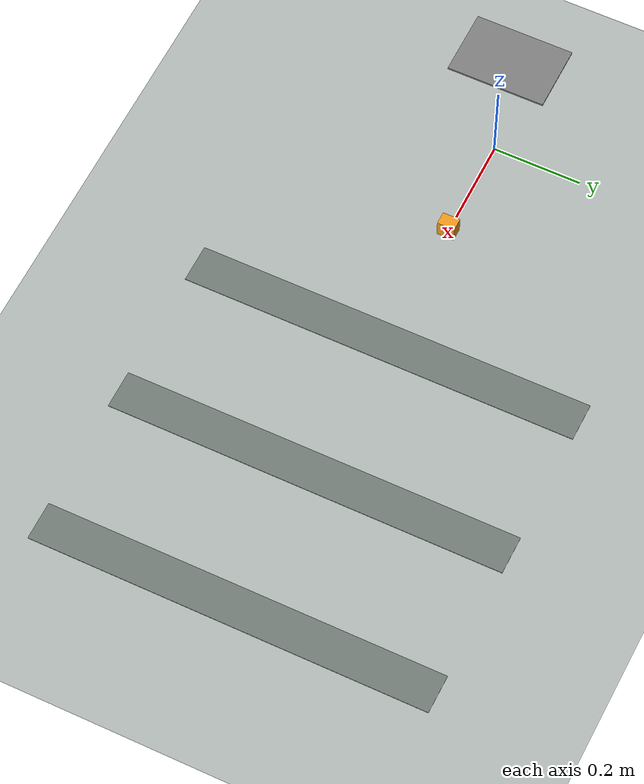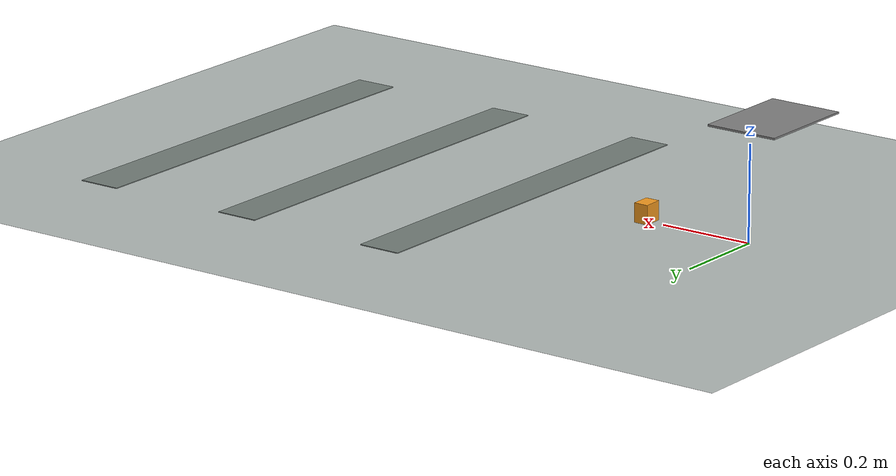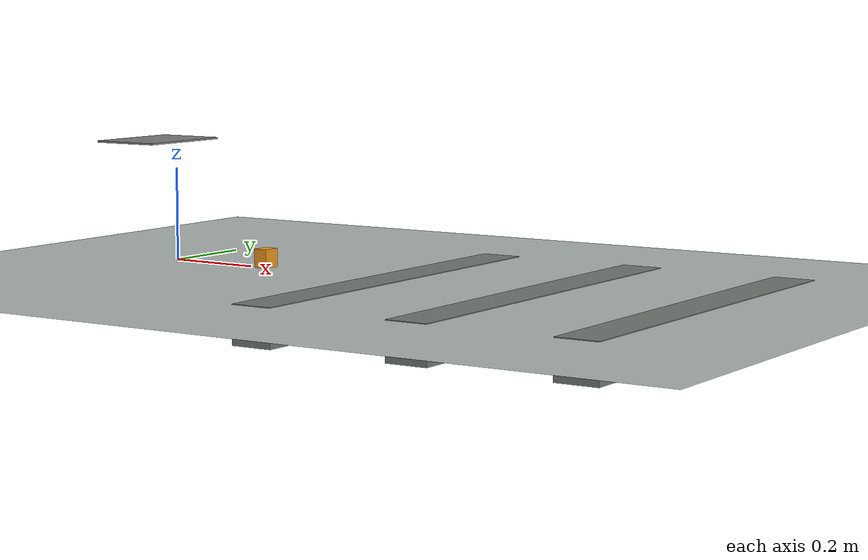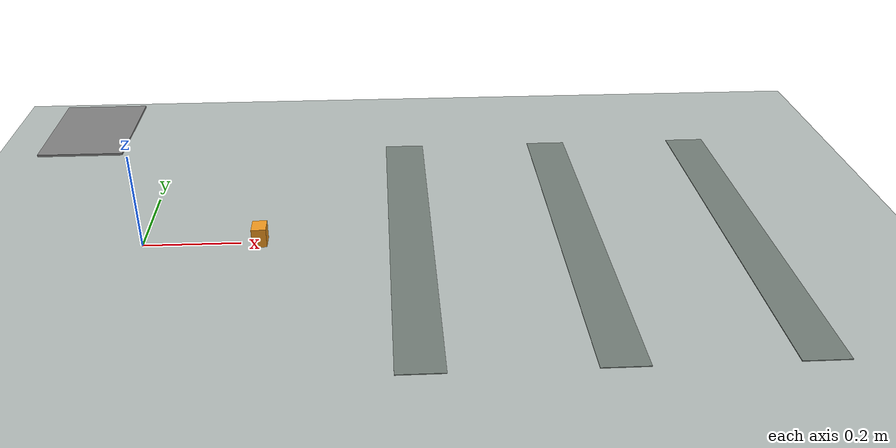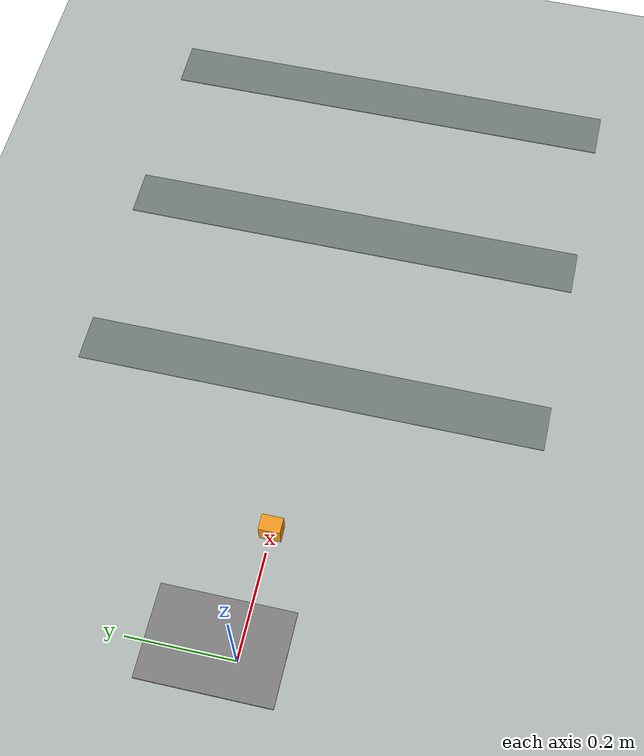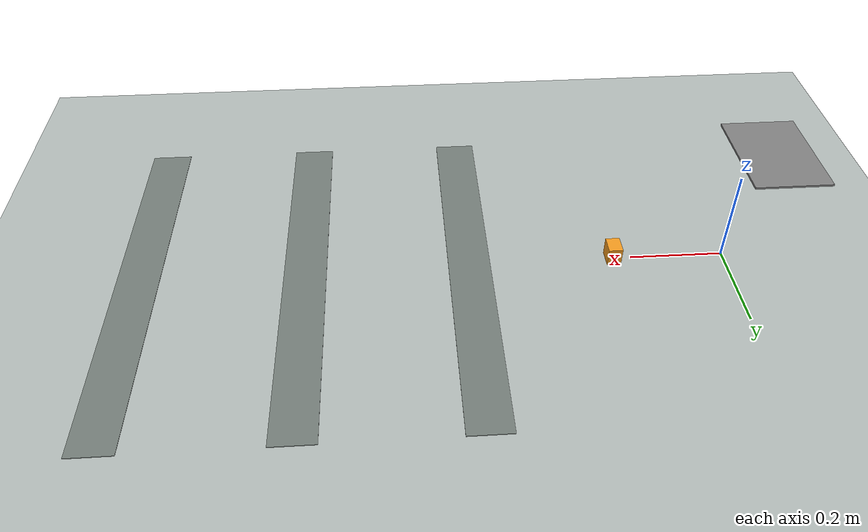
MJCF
<mujoco model="Sai_Agent_002_full">
  <compiler angle="radian" inertiafromgeom="false" autolimits="true" />
  <option timestep=".001" integrator="implicitfast" iterations="50" cone="elliptic" />
  <default>
    <geom density="0" friction=".8 .002 .0002" condim="4" solref=".006 1" contype="1" conaffinity="6" />
    <joint damping=".03" armature=".002" />
  </default>
  <visual>
    <global offwidth="1280" offheight="800" fovy="38" />
    <headlight ambient=".55 .55 .55" diffuse=".65 .65 .65" />
  </visual>
  <asset>
    <mesh name="chassis_contactmesh_2" file="contacts/cargo_shell_00.obj" />
    <mesh name="chassis_contactmesh_3" file="contacts/cargo_shell_01.obj" />
    <mesh name="chassis_contactmesh_4" file="contacts/cargo_shell_02.obj" />
    <mesh name="chassis_contactmesh_5" file="contacts/cargo_shell_03.obj" />
    <mesh name="chassis_contactmesh_6" file="contacts/cargo_shell_04.obj" />
    <mesh name="chassis_contactmesh_7" file="contacts/cargo_shell_05.obj" />
    <mesh name="chassis_contactmesh_8" file="contacts/cargo_shell_06.obj" />
    <mesh name="chassis_contactmesh_9" file="contacts/cargo_shell_07.obj" />
    <mesh name="chassis_contactmesh_10" file="contacts/cargo_shell_08.obj" />
    <mesh name="chassis_contactmesh_11" file="contacts/cargo_shell_09.obj" />
    <mesh name="chassis_contactmesh_12" file="contacts/cargo_shell_10.obj" />
    <mesh name="chassis_contactmesh_13" file="contacts/cargo_shell_11.obj" />
    <mesh name="chassis_contactmesh_14" file="contacts/cargo_shell_12.obj" />
    <mesh name="chassis_contactmesh_15" file="contacts/cargo_shell_13.obj" />
    <mesh name="chassis_contactmesh_16" file="contacts/cargo_shell_14.obj" />
    <mesh name="chassis_contactmesh_17" file="contacts/cargo_shell_15.obj" />
    <mesh name="chassis_contactmesh_18" file="contacts/cargo_shell_16.obj" />
    <mesh name="chassis_contactmesh_19" file="contacts/cargo_shell_17.obj" />
    <mesh name="chassis_contactmesh_20" file="contacts/cargo_shell_18.obj" />
    <mesh name="chassis_contactmesh_21" file="contacts/cargo_shell_19.obj" />
    <mesh name="chassis_contactmesh_22" file="contacts/cargo_shell_20.obj" />
    <mesh name="chassis_contactmesh_23" file="contacts/cargo_shell_21.obj" />
    <mesh name="chassis_contactmesh_24" file="contacts/cargo_shell_22.obj" />
    <mesh name="chassis_contactmesh_25" file="contacts/cargo_shell_23.obj" />
    <mesh name="chassis_contactmesh_26" file="contacts/cargo_shell_24.obj" />
    <mesh name="chassis_contactmesh_27" file="contacts/cargo_shell_25.obj" />
    <mesh name="chassis_contactmesh_28" file="contacts/cargo_shell_26.obj" />
    <mesh name="chassis_contactmesh_29" file="contacts/cargo_shell_27.obj" />
    <mesh name="chassis_contactmesh_30" file="contacts/cargo_shell_28.obj" />
    <mesh name="chassis_contactmesh_31" file="contacts/cargo_shell_29.obj" />
    <mesh name="chassis_contactmesh_32" file="contacts/cargo_shell_30.obj" />
    <mesh name="chassis_contactmesh_33" file="contacts/cargo_shell_31.obj" />
    <mesh name="arm_pan_carrier_contactmesh_0" file="contacts/pan_carrier_1_00.obj" />
    <mesh name="arm_upper_contactmesh_0" file="contacts/upper_2_00.obj" />
    <mesh name="arm_lower_contactmesh_0" file="contacts/lower_3_00.obj" />
    <mesh name="arm_wrist_contactmesh_0" file="contacts/wrist_7_00.obj" />
    <mesh name="arm_gripper_contactmesh_0" file="contacts/gripper_8_00.obj" />
    <mesh name="arm_gripper_contactmesh_1" file="contacts/gripper_8_01.obj" />
    <mesh name="arm_gripper_contactmesh_2" file="contacts/gripper_8_02.obj" />
    <mesh name="arm_gripper_contactmesh_3" file="contacts/gripper_8_03.obj" />
    <mesh name="arm_gripper_contactmesh_4" file="contacts/gripper_8_04.obj" />
    <mesh name="arm_gripper_contactmesh_5" file="contacts/gripper_8_05.obj" />
    <mesh name="arm_gripper_contactmesh_6" file="contacts/gripper_8_06.obj" />
    <mesh name="arm_gripper_contactmesh_7" file="contacts/gripper_8_07.obj" />
    <mesh name="arm_gripper_contactmesh_8" file="contacts/gripper_8_08.obj" />
    <mesh name="arm_gripper_contactmesh_9" file="contacts/gripper_8_09.obj" />
    <mesh name="arm_gripper_contactmesh_10" file="contacts/gripper_8_10.obj" />
    <mesh name="arm_gripper_contactmesh_11" file="contacts/gripper_8_11.obj" />
    <mesh name="arm_gripper_contactmesh_12" file="contacts/gripper_8_12.obj" />
    <mesh name="arm_gripper_contactmesh_13" file="contacts/gripper_8_13.obj" />
    <mesh name="arm_gripper_contactmesh_14" file="contacts/gripper_8_14.obj" />
    <mesh name="arm_gripper_contactmesh_15" file="contacts/gripper_8_15.obj" />
    <mesh name="arm_gripper_contactmesh_16" file="contacts/gripper_8_16.obj" />
    <mesh name="arm_gripper_contactmesh_17" file="contacts/gripper_8_17.obj" />
    <mesh name="arm_gripper_contactmesh_18" file="contacts/gripper_8_18.obj" />
    <mesh name="arm_gripper_contactmesh_19" file="contacts/gripper_8_19.obj" />
    <mesh name="arm_gripper_contactmesh_20" file="contacts/gripper_8_20.obj" />
    <mesh name="arm_gripper_contactmesh_21" file="contacts/gripper_8_21.obj" />
    <mesh name="arm_gripper_contactmesh_22" file="contacts/gripper_8_22.obj" />
    <mesh name="arm_gripper_contactmesh_23" file="contacts/gripper_8_23.obj" />
    <mesh name="arm_gripper_contactmesh_24" file="contacts/gripper_8_24.obj" />
    <mesh name="arm_gripper_contactmesh_25" file="contacts/gripper_8_25.obj" />
    <mesh name="arm_gripper_contactmesh_26" file="contacts/gripper_8_26.obj" />
    <mesh name="arm_gripper_contactmesh_27" file="contacts/gripper_8_27.obj" />
    <mesh name="arm_gripper_contactmesh_28" file="contacts/gripper_8_28.obj" />
    <mesh name="arm_gripper_contactmesh_29" file="contacts/gripper_8_29.obj" />
    <mesh name="arm_gripper_contactmesh_30" file="contacts/gripper_8_30.obj" />
    <mesh name="arm_gripper_contactmesh_31" file="contacts/gripper_8_31.obj" />
    <mesh name="arm_moving_jaw_contactmesh_0" file="contacts/moving_jaw_9_00.obj" />
    <mesh name="arm_moving_jaw_contactmesh_1" file="contacts/moving_jaw_9_01.obj" />
    <mesh name="arm_moving_jaw_contactmesh_2" file="contacts/moving_jaw_9_02.obj" />
    <mesh name="arm_moving_jaw_contactmesh_3" file="contacts/moving_jaw_9_03.obj" />
    <mesh name="arm_moving_jaw_contactmesh_4" file="contacts/moving_jaw_9_04.obj" />
    <mesh name="arm_moving_jaw_contactmesh_5" file="contacts/moving_jaw_9_05.obj" />
    <mesh name="arm_moving_jaw_contactmesh_6" file="contacts/moving_jaw_9_06.obj" />
    <mesh name="arm_moving_jaw_contactmesh_7" file="contacts/moving_jaw_9_07.obj" />
    <mesh name="arm_moving_jaw_contactmesh_8" file="contacts/moving_jaw_9_08.obj" />
    <mesh name="arm_moving_jaw_contactmesh_9" file="contacts/moving_jaw_9_09.obj" />
    <mesh name="arm_moving_jaw_contactmesh_10" file="contacts/moving_jaw_9_10.obj" />
    <mesh name="arm_moving_jaw_contactmesh_11" file="contacts/moving_jaw_9_11.obj" />
    <mesh name="arm_moving_jaw_contactmesh_12" file="contacts/moving_jaw_9_12.obj" />
    <mesh name="arm_moving_jaw_contactmesh_13" file="contacts/moving_jaw_9_13.obj" />
    <mesh name="arm_moving_jaw_contactmesh_14" file="contacts/moving_jaw_9_14.obj" />
    <mesh name="arm_moving_jaw_contactmesh_15" file="contacts/moving_jaw_9_15.obj" />
    <mesh name="arm_moving_jaw_contactmesh_16" file="contacts/moving_jaw_9_16.obj" />
    <mesh name="arm_moving_jaw_contactmesh_17" file="contacts/moving_jaw_9_17.obj" />
    <mesh name="arm_moving_jaw_contactmesh_18" file="contacts/moving_jaw_9_18.obj" />
    <mesh name="arm_moving_jaw_contactmesh_19" file="contacts/moving_jaw_9_19.obj" />
    <mesh name="arm_moving_jaw_contactmesh_20" file="contacts/moving_jaw_9_20.obj" />
    <mesh name="arm_moving_jaw_contactmesh_21" file="contacts/moving_jaw_9_21.obj" />
    <mesh name="arm_moving_jaw_contactmesh_22" file="contacts/moving_jaw_9_22.obj" />
    <mesh name="arm_moving_jaw_contactmesh_23" file="contacts/moving_jaw_9_23.obj" />
    <mesh name="arm_moving_jaw_contactmesh_24" file="contacts/moving_jaw_9_24.obj" />
    <mesh name="arm_moving_jaw_contactmesh_25" file="contacts/moving_jaw_9_25.obj" />
    <mesh name="arm_moving_jaw_contactmesh_26" file="contacts/moving_jaw_9_26.obj" />
    <mesh name="arm_moving_jaw_contactmesh_27" file="contacts/moving_jaw_9_27.obj" />
    <mesh name="arm_moving_jaw_contactmesh_28" file="contacts/moving_jaw_9_28.obj" />
    <mesh name="arm_moving_jaw_contactmesh_29" file="contacts/moving_jaw_9_29.obj" />
    <mesh name="arm_moving_jaw_contactmesh_30" file="contacts/moving_jaw_9_30.obj" />
    <mesh name="arm_moving_jaw_contactmesh_31" file="contacts/moving_jaw_9_31.obj" />
  </asset>
  <worldbody>
    <light pos="1 -2 4" dir="-.2 .4 -1" />
    <geom name="ground" type="plane" size="20 20 .1" rgba=".70 .73 .72 1" contype="2" conaffinity="5" />
    <body name="chassis" pos="0 0 .224">
      <freejoint name="floating_base" />
      <inertial mass="3.4179820792964373" pos="-0.002645314755932775 0.0011379632582390964 0.004087642108958029" fullinertia="0.02233667623677514 0.017951541497251332 0.032824449997219604 -0.0003700540060915821 -0.0009478608575620262 -0.0002605439952553236" />
      <geom name="chassis_contact_0" type="box" rgba=".18 .22 .28 1" group="3" pos="0 0 -0.014" size="0.12 0.067 0.041" />
      <geom name="chassis_contact_1" type="box" rgba=".18 .22 .28 1" group="3" pos="-.052 0 .038" size=".076 .110 .001" />
      <geom name="chassis_contact_2" type="mesh" rgba=".18 .22 .28 1" group="3" mesh="chassis_contactmesh_2" />
      <geom name="chassis_contact_3" type="mesh" rgba=".18 .22 .28 1" group="3" mesh="chassis_contactmesh_3" />
      <geom name="chassis_contact_4" type="mesh" rgba=".18 .22 .28 1" group="3" mesh="chassis_contactmesh_4" />
      <geom name="chassis_contact_5" type="mesh" rgba=".18 .22 .28 1" group="3" mesh="chassis_contactmesh_5" />
      <geom name="chassis_contact_6" type="mesh" rgba=".18 .22 .28 1" group="3" mesh="chassis_contactmesh_6" />
      <geom name="chassis_contact_7" type="mesh" rgba=".18 .22 .28 1" group="3" mesh="chassis_contactmesh_7" />
      <geom name="chassis_contact_8" type="mesh" rgba=".18 .22 .28 1" group="3" mesh="chassis_contactmesh_8" />
      <geom name="chassis_contact_9" type="mesh" rgba=".18 .22 .28 1" group="3" mesh="chassis_contactmesh_9" />
      <geom name="chassis_contact_10" type="mesh" rgba=".18 .22 .28 1" group="3" mesh="chassis_contactmesh_10" />
      <geom name="chassis_contact_11" type="mesh" rgba=".18 .22 .28 1" group="3" mesh="chassis_contactmesh_11" />
      <geom name="chassis_contact_12" type="mesh" rgba=".18 .22 .28 1" group="3" mesh="chassis_contactmesh_12" />
      <geom name="chassis_contact_13" type="mesh" rgba=".18 .22 .28 1" group="3" mesh="chassis_contactmesh_13" />
      <geom name="chassis_contact_14" type="mesh" rgba=".18 .22 .28 1" group="3" mesh="chassis_contactmesh_14" />
      <geom name="chassis_contact_15" type="mesh" rgba=".18 .22 .28 1" group="3" mesh="chassis_contactmesh_15" />
      <geom name="chassis_contact_16" type="mesh" rgba=".18 .22 .28 1" group="3" mesh="chassis_contactmesh_16" />
      <geom name="chassis_contact_17" type="mesh" rgba=".18 .22 .28 1" group="3" mesh="chassis_contactmesh_17" />
      <geom name="chassis_contact_18" type="mesh" rgba=".18 .22 .28 1" group="3" mesh="chassis_contactmesh_18" />
      <geom name="chassis_contact_19" type="mesh" rgba=".18 .22 .28 1" group="3" mesh="chassis_contactmesh_19" />
      <geom name="chassis_contact_20" type="mesh" rgba=".18 .22 .28 1" group="3" mesh="chassis_contactmesh_20" />
      <geom name="chassis_contact_21" type="mesh" rgba=".18 .22 .28 1" group="3" mesh="chassis_contactmesh_21" />
      <geom name="chassis_contact_22" type="mesh" rgba=".18 .22 .28 1" group="3" mesh="chassis_contactmesh_22" />
      <geom name="chassis_contact_23" type="mesh" rgba=".18 .22 .28 1" group="3" mesh="chassis_contactmesh_23" />
      <geom name="chassis_contact_24" type="mesh" rgba=".18 .22 .28 1" group="3" mesh="chassis_contactmesh_24" />
      <geom name="chassis_contact_25" type="mesh" rgba=".18 .22 .28 1" group="3" mesh="chassis_contactmesh_25" />
      <geom name="chassis_contact_26" type="mesh" rgba=".18 .22 .28 1" group="3" mesh="chassis_contactmesh_26" />
      <geom name="chassis_contact_27" type="mesh" rgba=".18 .22 .28 1" group="3" mesh="chassis_contactmesh_27" />
      <geom name="chassis_contact_28" type="mesh" rgba=".18 .22 .28 1" group="3" mesh="chassis_contactmesh_28" />
      <geom name="chassis_contact_29" type="mesh" rgba=".18 .22 .28 1" group="3" mesh="chassis_contactmesh_29" />
      <geom name="chassis_contact_30" type="mesh" rgba=".18 .22 .28 1" group="3" mesh="chassis_contactmesh_30" />
      <geom name="chassis_contact_31" type="mesh" rgba=".18 .22 .28 1" group="3" mesh="chassis_contactmesh_31" />
      <geom name="chassis_contact_32" type="mesh" rgba=".18 .22 .28 1" group="3" mesh="chassis_contactmesh_32" />
      <geom name="chassis_contact_33" type="mesh" rgba=".18 .22 .28 1" group="3" mesh="chassis_contactmesh_33" />
      <body name="front_left_haa" pos="0.08 0.1 0.000812737446806">
        <joint name="front_left_haa" type="hinge" axis="1 0 0" limited="true" range="-0.45 0.45" />
        <inertial pos="0.0342709656212 0.00683191650877 -8.01433919229e-12" mass="0.3723587323657154" diaginertia="0.000199865871851 0.000194857044869 0.000203824049134" />
        <geom name="front_left_haa_contact_0" type="capsule" rgba=".18 .22 .28 1" group="3" size="0.013" fromto="0 0 0 0.035 0.032 0" />
        <body name="front_left_upper" pos="0.035 0.032 0">
          <joint name="front_left_hip" type="hinge" axis="0 1 0" limited="true" range="-0.7 0.7" />
          <inertial pos="0.0463471772177 -0.0187045410886 -0.0693661033796" mass="0.40217792249786893" diaginertia="0.000364553482906 0.000406376960963 0.000294139286778" />
          <geom name="front_left_upper_contact_0" type="capsule" rgba=".18 .22 .28 1" group="3" size="0.013" fromto="0 0 0 0.05 0.004 -0.0748331477355" />
          <body name="front_left_lower" pos="0.05 0.004 -0.0748331477355">
            <joint name="front_left_knee" type="hinge" axis="0 1 0" limited="true" range="-1.2 1.2" />
            <inertial pos="-0.0440686978618 -0.00981995306591 -0.0863555010871" mass="0.31016661501863596" diaginertia="0.000431227371985 0.000561188911779 0.000227997517647" />
            <geom name="front_left_lower_contact_0" type="capsule" rgba=".18 .22 .28 1" group="3" size="0.013" fromto="0 0 0 -0.05 0.004 -0.0979795897113" />
            <body name="front_left_wheel" pos="-0.05 0.004 -0.0979795897113">
              <joint name="front_left_wheel" type="hinge" axis="0 1 0" limited="false" armature=".0003" />
              <inertial pos="-6.04722522057e-11 0.00632285226548 5.3058203664e-11" mass="0.17405915776164413" diaginertia="0.000125539159543 0.0002238928282 0.00012553915954" />
              <geom name="front_left_wheel_contact_0" type="cylinder" rgba=".18 .22 .28 1" group="3" pos="0 0.006 -6.93889390391e-18" size="0.048 0.016" quat="0.7071067812 0.7071067812 0 0" />
            </body>
          </body>
        </body>
      </body>
      <body name="front_right_haa" pos="0.08 -0.1 0.000812737446806">
        <joint name="front_right_haa" type="hinge" axis="1 0 0" limited="true" range="-0.45 0.45" />
        <inertial pos="0.0342709656212 -0.00683191650877 -8.01433919229e-12" mass="0.3723587323657154" diaginertia="0.000199865871851 0.000194857044869 0.000203824049134" />
        <geom name="front_right_haa_contact_0" type="capsule" rgba=".18 .22 .28 1" group="3" size="0.013" fromto="0 0 0 0.035 -0.032 0" />
        <body name="front_right_upper" pos="0.035 -0.032 0">
          <joint name="front_right_hip" type="hinge" axis="0 -1 0" limited="true" range="-0.7 0.7" />
          <inertial pos="0.0463471772177 0.0187045410886 -0.0693661033796" mass="0.40217792249786893" diaginertia="0.000364553482906 0.000406376960963 0.000294139286778" />
          <geom name="front_right_upper_contact_0" type="capsule" rgba=".18 .22 .28 1" group="3" size="0.013" fromto="0 0 0 0.05 -0.004 -0.0748331477355" />
          <body name="front_right_lower" pos="0.05 -0.004 -0.0748331477355">
            <joint name="front_right_knee" type="hinge" axis="0 -1 0" limited="true" range="-1.2 1.2" />
            <inertial pos="-0.0440686978618 0.00981995306591 -0.0863555010871" mass="0.31016661501863596" diaginertia="0.000431227371985 0.000561188911779 0.000227997517647" />
            <geom name="front_right_lower_contact_0" type="capsule" rgba=".18 .22 .28 1" group="3" size="0.013" fromto="0 0 0 -0.05 -0.004 -0.0979795897113" />
            <body name="front_right_wheel" pos="-0.05 -0.004 -0.0979795897113">
              <joint name="front_right_wheel" type="hinge" axis="0 -1 0" limited="false" armature=".0003" />
              <inertial pos="-6.04722244502e-11 -0.00632285226942 4.76915312797e-11" mass="0.17405915776164413" diaginertia="0.000125539159531 0.000223892828193 0.000125539159534" />
              <geom name="front_right_wheel_contact_0" type="cylinder" rgba=".18 .22 .28 1" group="3" pos="0 -0.006 0" size="0.048 0.016" quat="0.7071067812 0.7071067812 0 0" />
            </body>
          </body>
        </body>
      </body>
      <body name="rear_left_haa" pos="-0.08 0.1 0.000812737446806">
        <joint name="rear_left_haa" type="hinge" axis="-1 0 0" limited="true" range="-0.45 0.45" />
        <inertial pos="-0.034264076584 0.00683318988792 -1.32119593044e-11" mass="0.37244752934390074" diaginertia="0.000199905693304 0.000194963114375 0.000203913128607" />
        <geom name="rear_left_haa_contact_0" type="capsule" rgba=".18 .22 .28 1" group="3" size="0.013" fromto="0 0 0 -0.035 0.032 0" />
        <body name="rear_left_upper" pos="-0.035 0.032 0">
          <joint name="rear_left_hip" type="hinge" axis="0 1 0" limited="true" range="-0.7 0.7" />
          <inertial pos="-0.0463471771951 -0.0187045410886 -0.0693661033709" mass="0.40217792249786904" diaginertia="0.000364553483123 0.000406376961706 0.000294139287305" />
          <geom name="rear_left_upper_contact_0" type="capsule" rgba=".18 .22 .28 1" group="3" size="0.013" fromto="0 0 0 -0.05 0.004 -0.0748331477355" />
          <body name="rear_left_lower" pos="-0.05 0.004 -0.0748331477355">
            <joint name="rear_left_knee" type="hinge" axis="0 1 0" limited="true" range="-1.2 1.2" />
            <inertial pos="0.0440674458366 -0.0098199291105 -0.0863548839576" mass="0.31016661501863474" diaginertia="0.000431232016121 0.000561198072359 0.000228002320568" />
            <geom name="rear_left_lower_contact_0" type="capsule" rgba=".18 .22 .28 1" group="3" size="0.013" fromto="0 0 0 0.05 0.004 -0.0979795897113" />
            <body name="rear_left_wheel" pos="0.05 0.004 -0.0979795897113">
              <joint name="rear_left_wheel" type="hinge" axis="0 1 0" limited="false" armature=".0003" />
              <inertial pos="6.04722383279e-11 0.00632285226548 5.3058203664e-11" mass="0.17405915776164413" diaginertia="0.000125539159543 0.0002238928282 0.00012553915954" />
              <geom name="rear_left_wheel_contact_0" type="cylinder" rgba=".18 .22 .28 1" group="3" pos="0 0.006 -6.93889390391e-18" size="0.048 0.016" quat="0.7071067812 0.7071067812 0 0" />
            </body>
          </body>
        </body>
      </body>
      <body name="rear_right_haa" pos="-0.08 -0.1 0.000812737446806">
        <joint name="rear_right_haa" type="hinge" axis="-1 0 0" limited="true" range="-0.45 0.45" />
        <inertial pos="-0.034264076584 -0.00683318988792 -1.32119593044e-11" mass="0.37244752934390074" diaginertia="0.000199905693304 0.000194963114375 0.000203913128607" />
        <geom name="rear_right_haa_contact_0" type="capsule" rgba=".18 .22 .28 1" group="3" size="0.013" fromto="0 0 0 -0.035 -0.032 0" />
        <body name="rear_right_upper" pos="-0.035 -0.032 0">
          <joint name="rear_right_hip" type="hinge" axis="0 -1 0" limited="true" range="-0.7 0.7" />
          <inertial pos="-0.0463471771951 0.0187045410886 -0.0693661033709" mass="0.40217792249786904" diaginertia="0.000364553483123 0.000406376961706 0.000294139287305" />
          <geom name="rear_right_upper_contact_0" type="capsule" rgba=".18 .22 .28 1" group="3" size="0.013" fromto="0 0 0 -0.05 -0.004 -0.0748331477355" />
          <body name="rear_right_lower" pos="-0.05 -0.004 -0.0748331477355">
            <joint name="rear_right_knee" type="hinge" axis="0 -1 0" limited="true" range="-1.2 1.2" />
            <inertial pos="0.0440674458366 0.0098199291105 -0.0863548839576" mass="0.3101666150186348" diaginertia="0.000431232016121 0.000561198072359 0.000228002320568" />
            <geom name="rear_right_lower_contact_0" type="capsule" rgba=".18 .22 .28 1" group="3" size="0.013" fromto="0 0 0 0.05 -0.004 -0.0979795897113" />
            <body name="rear_right_wheel" pos="0.05 -0.004 -0.0979795897113">
              <joint name="rear_right_wheel" type="hinge" axis="0 -1 0" limited="false" armature=".0003" />
              <inertial pos="6.04722244502e-11 -0.00632285226942 4.76915174019e-11" mass="0.17405915776164413" diaginertia="0.000125539159531 0.000223892828193 0.000125539159534" />
              <geom name="rear_right_wheel_contact_0" type="cylinder" rgba=".18 .22 .28 1" group="3" pos="0 -0.006 0" size="0.048 0.016" quat="0.7071067812 0.7071067812 0 0" />
            </body>
          </body>
        </body>
      </body>
      <body name="arm_pan_carrier" pos="0.0829005675302 -0.00754322258164 0.0990352254596">
        <joint name="so101_shoulder_pan" type="hinge" axis="1.36167501881e-16 -0.00872653549837 0.999961923064" limited="true" range="-3.43914783552 0.295856763752" damping=".60" frictionloss=".052" armature=".028" />
        <inertial pos="0.0309482904656 -0.000290851973271 0.0286545953193" mass="0.100006" fullinertia="8.37599111071e-05 8.10392497007e-05 2.39784391922e-05 -7.0001726628e-08 -1.13503329235e-06 3.08931523289e-07" />
        <geom name="arm_pan_carrier_contact_0" type="mesh" rgba=".18 .22 .28 1" group="3" mesh="arm_pan_carrier_contactmesh_0" />
        <body name="arm_upper" pos="0.0308154616789 -0.0140569833466 0.0574784730244">
          <joint name="so101_shoulder_lift" type="hinge" axis="-0.00872653549837 0.999923847578 0.00872620321866" limited="true" range="-1.1691956518 2.21674309707" damping=".60" frictionloss=".052" armature=".028" />
          <inertial pos="-0.037784432436 0.0148955417296 0.0821331889017" mass="0.103" fullinertia="0.000137817195373 0.000142473996879 5.03140077478e-05 -3.69885111737e-07 3.62337518043e-05 1.11433506196e-06" />
          <geom name="arm_upper_contact_0" type="mesh" rgba=".18 .22 .28 1" group="3" mesh="arm_upper_contactmesh_0" />
          <body name="arm_lower" pos="-0.0323374633476 0.00123991543968 0.111456963537">
            <joint name="so101_elbow_flex" type="hinge" axis="-0.00116908955272 0.999913644752 0.0130895480753" limited="true" range="-2.85917219243 0.416108052453" damping=".60" frictionloss=".052" armature=".028" />
            <inertial pos="0.0772031252982 0.0167187637965 -0.0603454254614" mass="0.104" fullinertia="7.55871826708e-05 0.000145256357677 0.000113034259652 -1.98680708213e-06 6.32361086809e-05 1.31818299616e-06" />
            <geom name="arm_lower_contact_0" type="mesh" rgba=".18 .22 .28 1" group="3" mesh="arm_lower_contactmesh_0" />
            <body name="arm_wrist" pos="0.10595264946 0.00215761038458 -0.0823815700565">
              <joint name="so101_wrist_flex" type="hinge" axis="0.0111247281662 0.999837791742 0.0141644141475" limited="true" range="-2.21665711087 0.9947487128" damping=".60" frictionloss=".052" armature=".028" />
              <inertial pos="0.0103744575781 0.0260050537775 -0.0368917279501" mass="0.079" fullinertia="3.60465156126e-05 2.09242655562e-05 2.62465188312e-05 -1.10157277038e-06 2.86890329292e-06 3.42476869992e-06" />
              <geom name="arm_wrist_contact_0" type="mesh" rgba=".18 .22 .28 1" group="3" mesh="arm_wrist_contactmesh_0" />
              <body name="arm_gripper" pos="0.0152535597155 0.0177511593298 -0.0559687873944">
                <joint name="so101_wrist_roll" type="hinge" axis="-0.258824125964 -0.010803302736 0.965864048647" limited="true" range="-2.74093405939 2.73939979187" damping=".60" frictionloss=".052" armature=".028" />
                <inertial pos="0.0108743027078 0.00934591363135 -0.0273724997083" mass="0.10464642748535534" fullinertia="7.73647478802e-05 5.36430740862e-05 8.50682941137e-05 -1.7645594699e-05 -6.57626876314e-06 6.33001321591e-08" />
                <geom name="arm_gripper_contact_0" type="mesh" rgba=".18 .22 .28 1" group="3" mesh="arm_gripper_contactmesh_0" />
                <geom name="arm_gripper_contact_1" type="mesh" rgba=".18 .22 .28 1" group="3" mesh="arm_gripper_contactmesh_1" />
                <geom name="arm_gripper_contact_2" type="mesh" rgba=".18 .22 .28 1" group="3" mesh="arm_gripper_contactmesh_2" />
                <geom name="arm_gripper_contact_3" type="mesh" rgba=".18 .22 .28 1" group="3" mesh="arm_gripper_contactmesh_3" />
                <geom name="arm_gripper_contact_4" type="mesh" rgba=".18 .22 .28 1" group="3" mesh="arm_gripper_contactmesh_4" />
                <geom name="arm_gripper_contact_5" type="mesh" rgba=".18 .22 .28 1" group="3" mesh="arm_gripper_contactmesh_5" />
                <geom name="arm_gripper_contact_6" type="mesh" rgba=".18 .22 .28 1" group="3" mesh="arm_gripper_contactmesh_6" />
                <geom name="arm_gripper_contact_7" type="mesh" rgba=".18 .22 .28 1" group="3" mesh="arm_gripper_contactmesh_7" />
                <geom name="arm_gripper_contact_8" type="mesh" rgba=".18 .22 .28 1" group="3" mesh="arm_gripper_contactmesh_8" />
                <geom name="arm_gripper_contact_9" type="mesh" rgba=".18 .22 .28 1" group="3" mesh="arm_gripper_contactmesh_9" />
                <geom name="arm_gripper_contact_10" type="mesh" rgba=".18 .22 .28 1" group="3" mesh="arm_gripper_contactmesh_10" />
                <geom name="arm_gripper_contact_11" type="mesh" rgba=".18 .22 .28 1" group="3" mesh="arm_gripper_contactmesh_11" />
                <geom name="arm_gripper_contact_12" type="mesh" rgba=".18 .22 .28 1" group="3" mesh="arm_gripper_contactmesh_12" />
                <geom name="arm_gripper_contact_13" type="mesh" rgba=".18 .22 .28 1" group="3" mesh="arm_gripper_contactmesh_13" />
                <geom name="arm_gripper_contact_14" type="mesh" rgba=".18 .22 .28 1" group="3" mesh="arm_gripper_contactmesh_14" />
                <geom name="arm_gripper_contact_15" type="mesh" rgba=".18 .22 .28 1" group="3" mesh="arm_gripper_contactmesh_15" />
                <geom name="arm_gripper_contact_16" type="mesh" rgba=".18 .22 .28 1" group="3" mesh="arm_gripper_contactmesh_16" />
                <geom name="arm_gripper_contact_17" type="mesh" rgba=".18 .22 .28 1" group="3" mesh="arm_gripper_contactmesh_17" />
                <geom name="arm_gripper_contact_18" type="mesh" rgba=".18 .22 .28 1" group="3" mesh="arm_gripper_contactmesh_18" />
                <geom name="arm_gripper_contact_19" type="mesh" rgba=".18 .22 .28 1" group="3" mesh="arm_gripper_contactmesh_19" />
                <geom name="arm_gripper_contact_20" type="mesh" rgba=".18 .22 .28 1" group="3" mesh="arm_gripper_contactmesh_20" />
                <geom name="arm_gripper_contact_21" type="mesh" rgba=".18 .22 .28 1" group="3" mesh="arm_gripper_contactmesh_21" />
                <geom name="arm_gripper_contact_22" type="mesh" rgba=".18 .22 .28 1" group="3" mesh="arm_gripper_contactmesh_22" />
                <geom name="arm_gripper_contact_23" type="mesh" rgba=".18 .22 .28 1" group="3" mesh="arm_gripper_contactmesh_23" />
                <geom name="arm_gripper_contact_24" type="mesh" rgba=".18 .22 .28 1" group="3" mesh="arm_gripper_contactmesh_24" />
                <geom name="arm_gripper_contact_25" type="mesh" rgba=".18 .22 .28 1" group="3" mesh="arm_gripper_contactmesh_25" />
                <geom name="arm_gripper_contact_26" type="mesh" rgba=".18 .22 .28 1" group="3" mesh="arm_gripper_contactmesh_26" />
                <geom name="arm_gripper_contact_27" type="mesh" rgba=".18 .22 .28 1" group="3" mesh="arm_gripper_contactmesh_27" />
                <geom name="arm_gripper_contact_28" type="mesh" rgba=".18 .22 .28 1" group="3" mesh="arm_gripper_contactmesh_28" />
                <geom name="arm_gripper_contact_29" type="mesh" rgba=".18 .22 .28 1" group="3" mesh="arm_gripper_contactmesh_29" />
                <geom name="arm_gripper_contact_30" type="mesh" rgba=".18 .22 .28 1" group="3" mesh="arm_gripper_contactmesh_30" />
                <geom name="arm_gripper_contact_31" type="mesh" rgba=".18 .22 .28 1" group="3" mesh="arm_gripper_contactmesh_31" />
                <body name="arm_moving_jaw" pos="0.0263557971162 0.0160525292818 -0.0204553255103">
                  <joint name="so101_gripper" type="hinge" axis="0.00269569152367 0.999925479659 0.0119066525861" limited="true" range="-1.34335015936 0.471792262711" damping=".60" frictionloss=".052" armature=".028" />
                  <inertial pos="0.015869416688 -0.0165173572708 -0.0256869905565" mass="0.012" fullinertia="5.35818847474e-06 5.28528549974e-06 3.14849602552e-06 -8.39803562572e-08 2.11066781905e-06 1.13284546713e-07" />
                  <geom name="arm_moving_jaw_contact_0" type="mesh" rgba=".18 .22 .28 1" group="3" mesh="arm_moving_jaw_contactmesh_0" />
                  <geom name="arm_moving_jaw_contact_1" type="mesh" rgba=".18 .22 .28 1" group="3" mesh="arm_moving_jaw_contactmesh_1" />
                  <geom name="arm_moving_jaw_contact_2" type="mesh" rgba=".18 .22 .28 1" group="3" mesh="arm_moving_jaw_contactmesh_2" />
                  <geom name="arm_moving_jaw_contact_3" type="mesh" rgba=".18 .22 .28 1" group="3" mesh="arm_moving_jaw_contactmesh_3" />
                  <geom name="arm_moving_jaw_contact_4" type="mesh" rgba=".18 .22 .28 1" group="3" mesh="arm_moving_jaw_contactmesh_4" />
                  <geom name="arm_moving_jaw_contact_5" type="mesh" rgba=".18 .22 .28 1" group="3" mesh="arm_moving_jaw_contactmesh_5" />
                  <geom name="arm_moving_jaw_contact_6" type="mesh" rgba=".18 .22 .28 1" group="3" mesh="arm_moving_jaw_contactmesh_6" />
                  <geom name="arm_moving_jaw_contact_7" type="mesh" rgba=".18 .22 .28 1" group="3" mesh="arm_moving_jaw_contactmesh_7" />
                  <geom name="arm_moving_jaw_contact_8" type="mesh" rgba=".18 .22 .28 1" group="3" mesh="arm_moving_jaw_contactmesh_8" />
                  <geom name="arm_moving_jaw_contact_9" type="mesh" rgba=".18 .22 .28 1" group="3" mesh="arm_moving_jaw_contactmesh_9" />
                  <geom name="arm_moving_jaw_contact_10" type="mesh" rgba=".18 .22 .28 1" group="3" mesh="arm_moving_jaw_contactmesh_10" />
                  <geom name="arm_moving_jaw_contact_11" type="mesh" rgba=".18 .22 .28 1" group="3" mesh="arm_moving_jaw_contactmesh_11" />
                  <geom name="arm_moving_jaw_contact_12" type="mesh" rgba=".18 .22 .28 1" group="3" mesh="arm_moving_jaw_contactmesh_12" />
                  <geom name="arm_moving_jaw_contact_13" type="mesh" rgba=".18 .22 .28 1" group="3" mesh="arm_moving_jaw_contactmesh_13" />
                  <geom name="arm_moving_jaw_contact_14" type="mesh" rgba=".18 .22 .28 1" group="3" mesh="arm_moving_jaw_contactmesh_14" />
                  <geom name="arm_moving_jaw_contact_15" type="mesh" rgba=".18 .22 .28 1" group="3" mesh="arm_moving_jaw_contactmesh_15" />
                  <geom name="arm_moving_jaw_contact_16" type="mesh" rgba=".18 .22 .28 1" group="3" mesh="arm_moving_jaw_contactmesh_16" />
                  <geom name="arm_moving_jaw_contact_17" type="mesh" rgba=".18 .22 .28 1" group="3" mesh="arm_moving_jaw_contactmesh_17" />
                  <geom name="arm_moving_jaw_contact_18" type="mesh" rgba=".18 .22 .28 1" group="3" mesh="arm_moving_jaw_contactmesh_18" />
                  <geom name="arm_moving_jaw_contact_19" type="mesh" rgba=".18 .22 .28 1" group="3" mesh="arm_moving_jaw_contactmesh_19" />
                  <geom name="arm_moving_jaw_contact_20" type="mesh" rgba=".18 .22 .28 1" group="3" mesh="arm_moving_jaw_contactmesh_20" />
                  <geom name="arm_moving_jaw_contact_21" type="mesh" rgba=".18 .22 .28 1" group="3" mesh="arm_moving_jaw_contactmesh_21" />
                  <geom name="arm_moving_jaw_contact_22" type="mesh" rgba=".18 .22 .28 1" group="3" mesh="arm_moving_jaw_contactmesh_22" />
                  <geom name="arm_moving_jaw_contact_23" type="mesh" rgba=".18 .22 .28 1" group="3" mesh="arm_moving_jaw_contactmesh_23" />
                  <geom name="arm_moving_jaw_contact_24" type="mesh" rgba=".18 .22 .28 1" group="3" mesh="arm_moving_jaw_contactmesh_24" />
                  <geom name="arm_moving_jaw_contact_25" type="mesh" rgba=".18 .22 .28 1" group="3" mesh="arm_moving_jaw_contactmesh_25" />
                  <geom name="arm_moving_jaw_contact_26" type="mesh" rgba=".18 .22 .28 1" group="3" mesh="arm_moving_jaw_contactmesh_26" />
                  <geom name="arm_moving_jaw_contact_27" type="mesh" rgba=".18 .22 .28 1" group="3" mesh="arm_moving_jaw_contactmesh_27" />
                  <geom name="arm_moving_jaw_contact_28" type="mesh" rgba=".18 .22 .28 1" group="3" mesh="arm_moving_jaw_contactmesh_28" />
                  <geom name="arm_moving_jaw_contact_29" type="mesh" rgba=".18 .22 .28 1" group="3" mesh="arm_moving_jaw_contactmesh_29" />
                  <geom name="arm_moving_jaw_contact_30" type="mesh" rgba=".18 .22 .28 1" group="3" mesh="arm_moving_jaw_contactmesh_30" />
                  <geom name="arm_moving_jaw_contact_31" type="mesh" rgba=".18 .22 .28 1" group="3" mesh="arm_moving_jaw_contactmesh_31" />
                </body>
                <camera name="wrist_camera" pos="0.0376619309362 0.0567115173589 -0.0334055735951" xyaxes="-0.181321129551 -0.727685850774 0.661510355597 0.983103093055 -0.151306287627 0.103027742622" fovy="67" />
                <site name="tool_center" pos="0.0331204572774 0.000775813237427 -0.0961817421381" size=".002" rgba="1 .2 .2 0" />
              </body>
            </body>
          </body>
        </body>
      </body>
      <camera name="main_camera" pos="0.164569427081 0.07 0.0699222662043" xyaxes="0 -1 0 0.707106781187 0 0.707106781187" fovy="67" />
      <geom name="cargo_floor_restoration" type="box" pos="-.052 0 .035" size=".076 .110 .002" />
    </body>
    <body name="item" pos="0.240023671429 2.41489046314e-07 0.0203730734949" quat="0.0030361553291 0.70523503112 0.708960467238 -0.00306407185546">
      <freejoint name="item_free" />
      <inertial pos="0 0 0" mass=".1" diaginertia="2.08333333333e-05 2.66666666667e-05 2.08333333333e-05" />
      <geom name="item_box" type="box" size="0.02 0.015 0.02" mass=".1" rgba=".95 .60 .12 1" contype="4" conaffinity="3" />
    </body>
    <geom name="course_0" type="box" pos="0.55 0 -0.04" size=".045 .45 .04" rgba=".45 .49 .47 1" contype="2" conaffinity="5" />
    <geom name="course_1" type="box" pos="0.9 0 -0.04" size=".045 .45 .04" rgba=".45 .49 .47 1" contype="2" conaffinity="5" />
    <geom name="course_2" type="box" pos="1.25 0 -0.04" size=".045 .45 .04" rgba=".45 .49 .47 1" contype="2" conaffinity="5" />
  </worldbody>
  <actuator>
    <motor name="front_left_haa_motor" joint="front_left_haa" ctrlrange="-8 8" forcerange="-8 8" />
    <motor name="front_left_hip_motor" joint="front_left_hip" ctrlrange="-8 8" forcerange="-8 8" />
    <motor name="front_left_knee_motor" joint="front_left_knee" ctrlrange="-8 8" forcerange="-8 8" />
    <motor name="front_left_wheel_motor" joint="front_left_wheel" ctrlrange="-1.3 1.3" forcerange="-1.3 1.3" />
    <motor name="front_right_haa_motor" joint="front_right_haa" ctrlrange="-8 8" forcerange="-8 8" />
    <motor name="front_right_hip_motor" joint="front_right_hip" ctrlrange="-8 8" forcerange="-8 8" />
    <motor name="front_right_knee_motor" joint="front_right_knee" ctrlrange="-8 8" forcerange="-8 8" />
    <motor name="front_right_wheel_motor" joint="front_right_wheel" ctrlrange="-1.3 1.3" forcerange="-1.3 1.3" />
    <motor name="rear_left_haa_motor" joint="rear_left_haa" ctrlrange="-8 8" forcerange="-8 8" />
    <motor name="rear_left_hip_motor" joint="rear_left_hip" ctrlrange="-8 8" forcerange="-8 8" />
    <motor name="rear_left_knee_motor" joint="rear_left_knee" ctrlrange="-8 8" forcerange="-8 8" />
    <motor name="rear_left_wheel_motor" joint="rear_left_wheel" ctrlrange="-1.3 1.3" forcerange="-1.3 1.3" />
    <motor name="rear_right_haa_motor" joint="rear_right_haa" ctrlrange="-8 8" forcerange="-8 8" />
    <motor name="rear_right_hip_motor" joint="rear_right_hip" ctrlrange="-8 8" forcerange="-8 8" />
    <motor name="rear_right_knee_motor" joint="rear_right_knee" ctrlrange="-8 8" forcerange="-8 8" />
    <motor name="rear_right_wheel_motor" joint="rear_right_wheel" ctrlrange="-1.3 1.3" forcerange="-1.3 1.3" />
    <motor name="so101_shoulder_pan_motor" joint="so101_shoulder_pan" ctrlrange="-2.94 2.94" forcerange="-2.94 2.94" />
    <motor name="so101_shoulder_lift_motor" joint="so101_shoulder_lift" ctrlrange="-2.94 2.94" forcerange="-2.94 2.94" />
    <motor name="so101_elbow_flex_motor" joint="so101_elbow_flex" ctrlrange="-2.94 2.94" forcerange="-2.94 2.94" />
    <motor name="so101_wrist_flex_motor" joint="so101_wrist_flex" ctrlrange="-2.94 2.94" forcerange="-2.94 2.94" />
    <motor name="so101_wrist_roll_motor" joint="so101_wrist_roll" ctrlrange="-2.94 2.94" forcerange="-2.94 2.94" />
    <motor name="so101_gripper_motor" joint="so101_gripper" ctrlrange="-2.94 2.94" forcerange="-2.94 2.94" />
  </actuator>
</mujoco>
